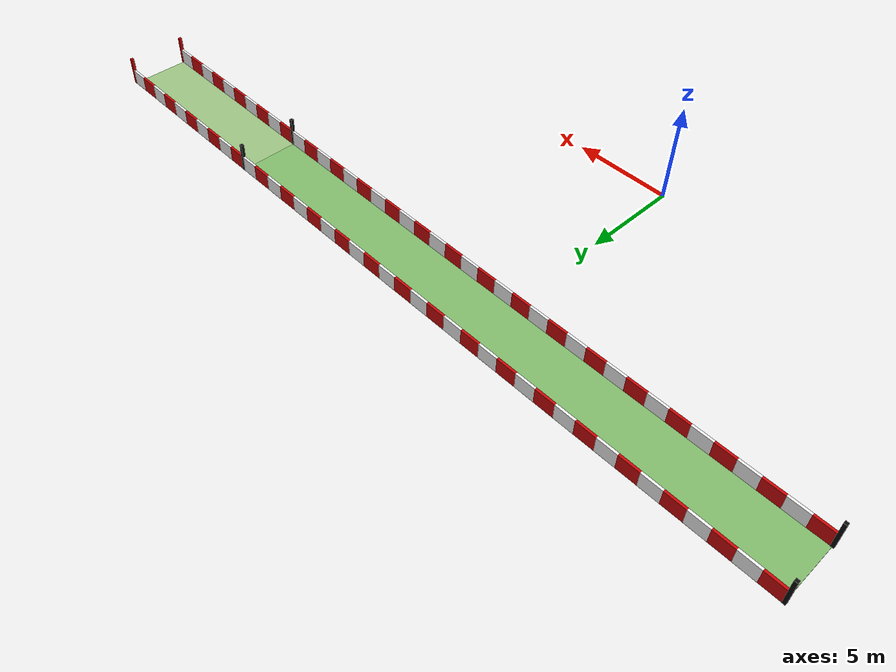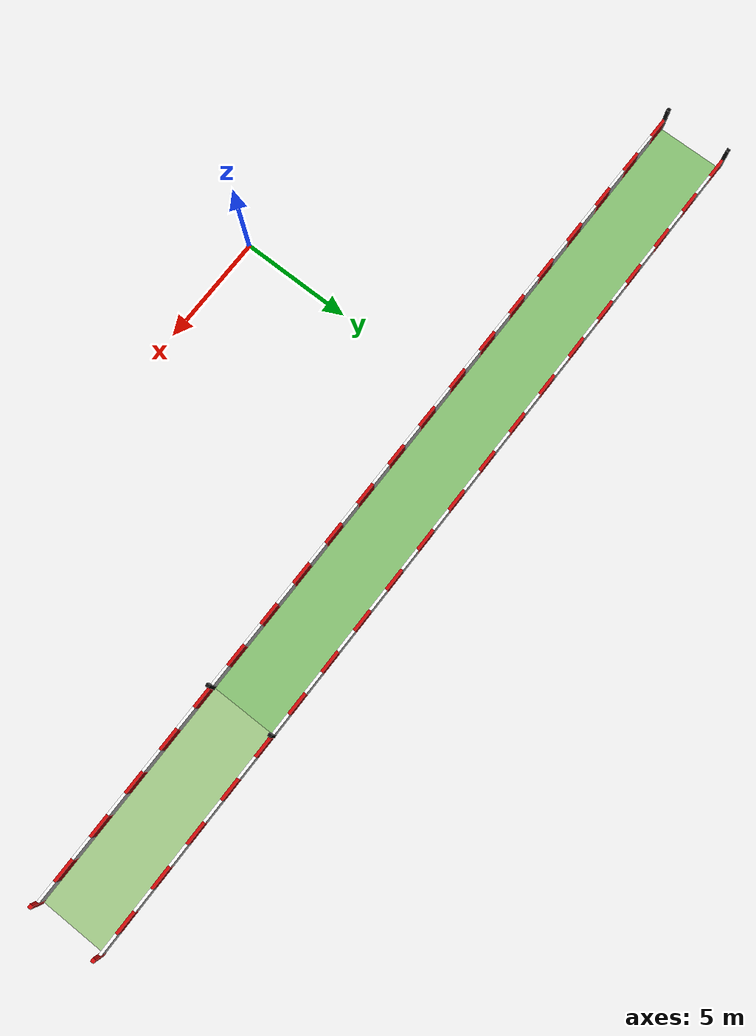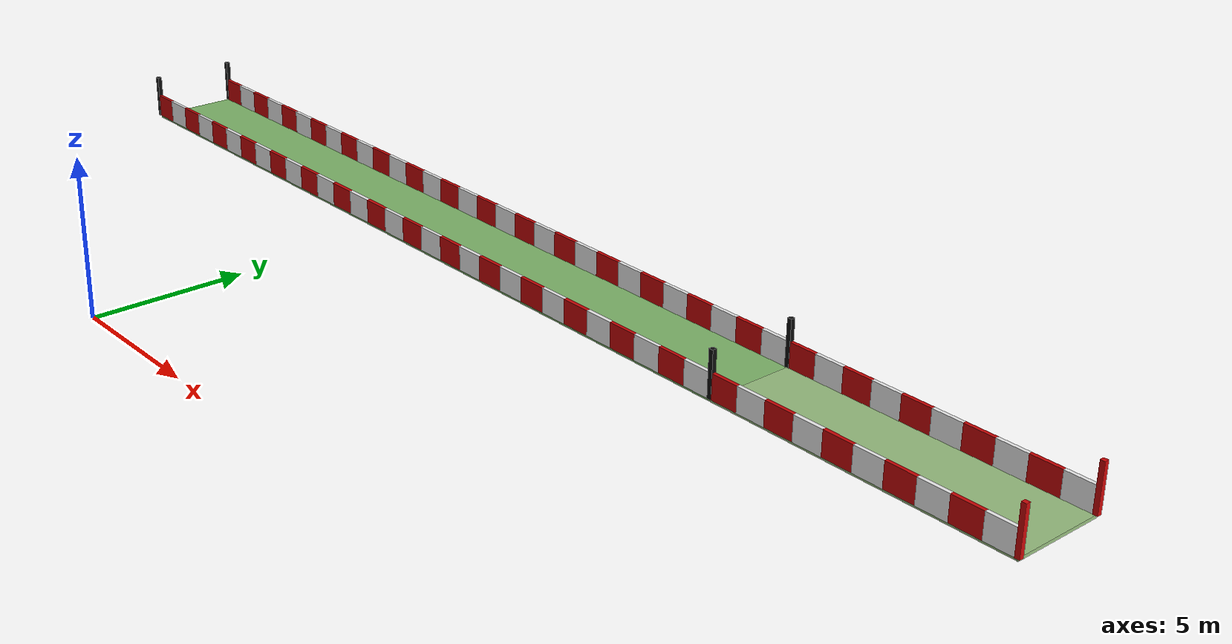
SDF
<sdf version="1.6">
 <world name="evrenos_teknofest_2026">
  <include><uri>model://sun</uri></include>
  <model name="acceleration_course">
   <static>true</static>
   <link name="accel_30m">
    <pose>0.0000 12.0000 -0.0500 0.000000 0.000000 0.000000</pose>
    <collision name="accel_30m_collision">
     <geometry><box><size>30.0000 3.0000 0.1000</size></box></geometry>
    </collision>
    <visual name="accel_30m_visual">
     <geometry><box><size>30.0000 3.0000 0.1000</size></box></geometry>
     <material><ambient>0.5 0.72 0.42 1</ambient><diffuse>0.5 0.72 0.42 1</diffuse></material>
    </visual>
   </link>
   <link name="accel_stop_10m">
    <pose>20.0000 12.0000 -0.0500 0.000000 0.000000 0.000000</pose>
    <collision name="accel_stop_10m_collision">
     <geometry><box><size>10.0000 3.0000 0.1000</size></box></geometry>
    </collision>
    <visual name="accel_stop_10m_visual">
     <geometry><box><size>10.0000 3.0000 0.1000</size></box></geometry>
     <material><ambient>0.6 0.75 0.5 1</ambient><diffuse>0.6 0.75 0.5 1</diffuse></material>
    </visual>
   </link>
   <link name="accel_bar_-1_0">
    <pose>-14.5000 10.5000 0.4000 0.000000 0.000000 0.000000</pose>
    <collision name="accel_bar_-1_0_collision">
     <geometry><box><size>1.0000 0.1200 0.8000</size></box></geometry>
    </collision>
    <visual name="accel_bar_-1_0_visual">
     <geometry><box><size>1.0000 0.1200 0.8000</size></box></geometry>
     <material><ambient>0.8 0.03 0.03 1</ambient><diffuse>0.8 0.03 0.03 1</diffuse></material>
    </visual>
   </link>
   <link name="accel_bar_-1_1">
    <pose>-13.5000 10.5000 0.4000 0.000000 0.000000 0.000000</pose>
    <collision name="accel_bar_-1_1_collision">
     <geometry><box><size>1.0000 0.1200 0.8000</size></box></geometry>
    </collision>
    <visual name="accel_bar_-1_1_visual">
     <geometry><box><size>1.0000 0.1200 0.8000</size></box></geometry>
     <material><ambient>0.95 0.95 0.95 1</ambient><diffuse>0.95 0.95 0.95 1</diffuse></material>
    </visual>
   </link>
   <link name="accel_bar_-1_2">
    <pose>-12.5000 10.5000 0.4000 0.000000 0.000000 0.000000</pose>
    <collision name="accel_bar_-1_2_collision">
     <geometry><box><size>1.0000 0.1200 0.8000</size></box></geometry>
    </collision>
    <visual name="accel_bar_-1_2_visual">
     <geometry><box><size>1.0000 0.1200 0.8000</size></box></geometry>
     <material><ambient>0.8 0.03 0.03 1</ambient><diffuse>0.8 0.03 0.03 1</diffuse></material>
    </visual>
   </link>
   <link name="accel_bar_-1_3">
    <pose>-11.5000 10.5000 0.4000 0.000000 0.000000 0.000000</pose>
    <collision name="accel_bar_-1_3_collision">
     <geometry><box><size>1.0000 0.1200 0.8000</size></box></geometry>
    </collision>
    <visual name="accel_bar_-1_3_visual">
     <geometry><box><size>1.0000 0.1200 0.8000</size></box></geometry>
     <material><ambient>0.95 0.95 0.95 1</ambient><diffuse>0.95 0.95 0.95 1</diffuse></material>
    </visual>
   </link>
   <link name="accel_bar_-1_4">
    <pose>-10.5000 10.5000 0.4000 0.000000 0.000000 0.000000</pose>
    <collision name="accel_bar_-1_4_collision">
     <geometry><box><size>1.0000 0.1200 0.8000</size></box></geometry>
    </collision>
    <visual name="accel_bar_-1_4_visual">
     <geometry><box><size>1.0000 0.1200 0.8000</size></box></geometry>
     <material><ambient>0.8 0.03 0.03 1</ambient><diffuse>0.8 0.03 0.03 1</diffuse></material>
    </visual>
   </link>
   <link name="accel_bar_-1_5">
    <pose>-9.5000 10.5000 0.4000 0.000000 0.000000 0.000000</pose>
    <collision name="accel_bar_-1_5_collision">
     <geometry><box><size>1.0000 0.1200 0.8000</size></box></geometry>
    </collision>
    <visual name="accel_bar_-1_5_visual">
     <geometry><box><size>1.0000 0.1200 0.8000</size></box></geometry>
     <material><ambient>0.95 0.95 0.95 1</ambient><diffuse>0.95 0.95 0.95 1</diffuse></material>
    </visual>
   </link>
   <link name="accel_bar_-1_6">
    <pose>-8.5000 10.5000 0.4000 0.000000 0.000000 0.000000</pose>
    <collision name="accel_bar_-1_6_collision">
     <geometry><box><size>1.0000 0.1200 0.8000</size></box></geometry>
    </collision>
    <visual name="accel_bar_-1_6_visual">
     <geometry><box><size>1.0000 0.1200 0.8000</size></box></geometry>
     <material><ambient>0.8 0.03 0.03 1</ambient><diffuse>0.8 0.03 0.03 1</diffuse></material>
    </visual>
   </link>
   <link name="accel_bar_-1_7">
    <pose>-7.5000 10.5000 0.4000 0.000000 0.000000 0.000000</pose>
    <collision name="accel_bar_-1_7_collision">
     <geometry><box><size>1.0000 0.1200 0.8000</size></box></geometry>
    </collision>
    <visual name="accel_bar_-1_7_visual">
     <geometry><box><size>1.0000 0.1200 0.8000</size></box></geometry>
     <material><ambient>0.95 0.95 0.95 1</ambient><diffuse>0.95 0.95 0.95 1</diffuse></material>
    </visual>
   </link>
   <link name="accel_bar_-1_8">
    <pose>-6.5000 10.5000 0.4000 0.000000 0.000000 0.000000</pose>
    <collision name="accel_bar_-1_8_collision">
     <geometry><box><size>1.0000 0.1200 0.8000</size></box></geometry>
    </collision>
    <visual name="accel_bar_-1_8_visual">
     <geometry><box><size>1.0000 0.1200 0.8000</size></box></geometry>
     <material><ambient>0.8 0.03 0.03 1</ambient><diffuse>0.8 0.03 0.03 1</diffuse></material>
    </visual>
   </link>
   <link name="accel_bar_-1_9">
    <pose>-5.5000 10.5000 0.4000 0.000000 0.000000 0.000000</pose>
    <collision name="accel_bar_-1_9_collision">
     <geometry><box><size>1.0000 0.1200 0.8000</size></box></geometry>
    </collision>
    <visual name="accel_bar_-1_9_visual">
     <geometry><box><size>1.0000 0.1200 0.8000</size></box></geometry>
     <material><ambient>0.95 0.95 0.95 1</ambient><diffuse>0.95 0.95 0.95 1</diffuse></material>
    </visual>
   </link>
   <link name="accel_bar_-1_10">
    <pose>-4.5000 10.5000 0.4000 0.000000 0.000000 0.000000</pose>
    <collision name="accel_bar_-1_10_collision">
     <geometry><box><size>1.0000 0.1200 0.8000</size></box></geometry>
    </collision>
    <visual name="accel_bar_-1_10_visual">
     <geometry><box><size>1.0000 0.1200 0.8000</size></box></geometry>
     <material><ambient>0.8 0.03 0.03 1</ambient><diffuse>0.8 0.03 0.03 1</diffuse></material>
    </visual>
   </link>
   <link name="accel_bar_-1_11">
    <pose>-3.5000 10.5000 0.4000 0.000000 0.000000 0.000000</pose>
    <collision name="accel_bar_-1_11_collision">
     <geometry><box><size>1.0000 0.1200 0.8000</size></box></geometry>
    </collision>
    <visual name="accel_bar_-1_11_visual">
     <geometry><box><size>1.0000 0.1200 0.8000</size></box></geometry>
     <material><ambient>0.95 0.95 0.95 1</ambient><diffuse>0.95 0.95 0.95 1</diffuse></material>
    </visual>
   </link>
   <link name="accel_bar_-1_12">
    <pose>-2.5000 10.5000 0.4000 0.000000 0.000000 0.000000</pose>
    <collision name="accel_bar_-1_12_collision">
     <geometry><box><size>1.0000 0.1200 0.8000</size></box></geometry>
    </collision>
    <visual name="accel_bar_-1_12_visual">
     <geometry><box><size>1.0000 0.1200 0.8000</size></box></geometry>
     <material><ambient>0.8 0.03 0.03 1</ambient><diffuse>0.8 0.03 0.03 1</diffuse></material>
    </visual>
   </link>
   <link name="accel_bar_-1_13">
    <pose>-1.5000 10.5000 0.4000 0.000000 0.000000 0.000000</pose>
    <collision name="accel_bar_-1_13_collision">
     <geometry><box><size>1.0000 0.1200 0.8000</size></box></geometry>
    </collision>
    <visual name="accel_bar_-1_13_visual">
     <geometry><box><size>1.0000 0.1200 0.8000</size></box></geometry>
     <material><ambient>0.95 0.95 0.95 1</ambient><diffuse>0.95 0.95 0.95 1</diffuse></material>
    </visual>
   </link>
   <link name="accel_bar_-1_14">
    <pose>-0.5000 10.5000 0.4000 0.000000 0.000000 0.000000</pose>
    <collision name="accel_bar_-1_14_collision">
     <geometry><box><size>1.0000 0.1200 0.8000</size></box></geometry>
    </collision>
    <visual name="accel_bar_-1_14_visual">
     <geometry><box><size>1.0000 0.1200 0.8000</size></box></geometry>
     <material><ambient>0.8 0.03 0.03 1</ambient><diffuse>0.8 0.03 0.03 1</diffuse></material>
    </visual>
   </link>
   <link name="accel_bar_-1_15">
    <pose>0.5000 10.5000 0.4000 0.000000 0.000000 0.000000</pose>
    <collision name="accel_bar_-1_15_collision">
     <geometry><box><size>1.0000 0.1200 0.8000</size></box></geometry>
    </collision>
    <visual name="accel_bar_-1_15_visual">
     <geometry><box><size>1.0000 0.1200 0.8000</size></box></geometry>
     <material><ambient>0.95 0.95 0.95 1</ambient><diffuse>0.95 0.95 0.95 1</diffuse></material>
    </visual>
   </link>
   <link name="accel_bar_-1_16">
    <pose>1.5000 10.5000 0.4000 0.000000 0.000000 0.000000</pose>
    <collision name="accel_bar_-1_16_collision">
     <geometry><box><size>1.0000 0.1200 0.8000</size></box></geometry>
    </collision>
    <visual name="accel_bar_-1_16_visual">
     <geometry><box><size>1.0000 0.1200 0.8000</size></box></geometry>
     <material><ambient>0.8 0.03 0.03 1</ambient><diffuse>0.8 0.03 0.03 1</diffuse></material>
    </visual>
   </link>
   <link name="accel_bar_-1_17">
    <pose>2.5000 10.5000 0.4000 0.000000 0.000000 0.000000</pose>
    <collision name="accel_bar_-1_17_collision">
     <geometry><box><size>1.0000 0.1200 0.8000</size></box></geometry>
    </collision>
    <visual name="accel_bar_-1_17_visual">
     <geometry><box><size>1.0000 0.1200 0.8000</size></box></geometry>
     <material><ambient>0.95 0.95 0.95 1</ambient><diffuse>0.95 0.95 0.95 1</diffuse></material>
    </visual>
   </link>
   <link name="accel_bar_-1_18">
    <pose>3.5000 10.5000 0.4000 0.000000 0.000000 0.000000</pose>
    <collision name="accel_bar_-1_18_collision">
     <geometry><box><size>1.0000 0.1200 0.8000</size></box></geometry>
    </collision>
    <visual name="accel_bar_-1_18_visual">
     <geometry><box><size>1.0000 0.1200 0.8000</size></box></geometry>
     <material><ambient>0.8 0.03 0.03 1</ambient><diffuse>0.8 0.03 0.03 1</diffuse></material>
    </visual>
   </link>
   <link name="accel_bar_-1_19">
    <pose>4.5000 10.5000 0.4000 0.000000 0.000000 0.000000</pose>
    <collision name="accel_bar_-1_19_collision">
     <geometry><box><size>1.0000 0.1200 0.8000</size></box></geometry>
    </collision>
    <visual name="accel_bar_-1_19_visual">
     <geometry><box><size>1.0000 0.1200 0.8000</size></box></geometry>
     <material><ambient>0.95 0.95 0.95 1</ambient><diffuse>0.95 0.95 0.95 1</diffuse></material>
    </visual>
   </link>
   <link name="accel_bar_-1_20">
    <pose>5.5000 10.5000 0.4000 0.000000 0.000000 0.000000</pose>
    <collision name="accel_bar_-1_20_collision">
     <geometry><box><size>1.0000 0.1200 0.8000</size></box></geometry>
    </collision>
    <visual name="accel_bar_-1_20_visual">
     <geometry><box><size>1.0000 0.1200 0.8000</size></box></geometry>
     <material><ambient>0.8 0.03 0.03 1</ambient><diffuse>0.8 0.03 0.03 1</diffuse></material>
    </visual>
   </link>
   <link name="accel_bar_-1_21">
    <pose>6.5000 10.5000 0.4000 0.000000 0.000000 0.000000</pose>
    <collision name="accel_bar_-1_21_collision">
     <geometry><box><size>1.0000 0.1200 0.8000</size></box></geometry>
    </collision>
    <visual name="accel_bar_-1_21_visual">
     <geometry><box><size>1.0000 0.1200 0.8000</size></box></geometry>
     <material><ambient>0.95 0.95 0.95 1</ambient><diffuse>0.95 0.95 0.95 1</diffuse></material>
    </visual>
   </link>
   <link name="accel_bar_-1_22">
    <pose>7.5000 10.5000 0.4000 0.000000 0.000000 0.000000</pose>
    <collision name="accel_bar_-1_22_collision">
     <geometry><box><size>1.0000 0.1200 0.8000</size></box></geometry>
    </collision>
    <visual name="accel_bar_-1_22_visual">
     <geometry><box><size>1.0000 0.1200 0.8000</size></box></geometry>
     <material><ambient>0.8 0.03 0.03 1</ambient><diffuse>0.8 0.03 0.03 1</diffuse></material>
    </visual>
   </link>
   <link name="accel_bar_-1_23">
    <pose>8.5000 10.5000 0.4000 0.000000 0.000000 0.000000</pose>
    <collision name="accel_bar_-1_23_collision">
     <geometry><box><size>1.0000 0.1200 0.8000</size></box></geometry>
    </collision>
    <visual name="accel_bar_-1_23_visual">
     <geometry><box><size>1.0000 0.1200 0.8000</size></box></geometry>
     <material><ambient>0.95 0.95 0.95 1</ambient><diffuse>0.95 0.95 0.95 1</diffuse></material>
    </visual>
   </link>
   <link name="accel_bar_-1_24">
    <pose>9.5000 10.5000 0.4000 0.000000 0.000000 0.000000</pose>
    <collision name="accel_bar_-1_24_collision">
     <geometry><box><size>1.0000 0.1200 0.8000</size></box></geometry>
    </collision>
    <visual name="accel_bar_-1_24_visual">
     <geometry><box><size>1.0000 0.1200 0.8000</size></box></geometry>
     <material><ambient>0.8 0.03 0.03 1</ambient><diffuse>0.8 0.03 0.03 1</diffuse></material>
    </visual>
   </link>
   <link name="accel_bar_-1_25">
    <pose>10.5000 10.5000 0.4000 0.000000 0.000000 0.000000</pose>
    <collision name="accel_bar_-1_25_collision">
     <geometry><box><size>1.0000 0.1200 0.8000</size></box></geometry>
    </collision>
    <visual name="accel_bar_-1_25_visual">
     <geometry><box><size>1.0000 0.1200 0.8000</size></box></geometry>
     <material><ambient>0.95 0.95 0.95 1</ambient><diffuse>0.95 0.95 0.95 1</diffuse></material>
    </visual>
   </link>
   <link name="accel_bar_-1_26">
    <pose>11.5000 10.5000 0.4000 0.000000 0.000000 0.000000</pose>
    <collision name="accel_bar_-1_26_collision">
     <geometry><box><size>1.0000 0.1200 0.8000</size></box></geometry>
    </collision>
    <visual name="accel_bar_-1_26_visual">
     <geometry><box><size>1.0000 0.1200 0.8000</size></box></geometry>
     <material><ambient>0.8 0.03 0.03 1</ambient><diffuse>0.8 0.03 0.03 1</diffuse></material>
    </visual>
   </link>
   <link name="accel_bar_-1_27">
    <pose>12.5000 10.5000 0.4000 0.000000 0.000000 0.000000</pose>
    <collision name="accel_bar_-1_27_collision">
     <geometry><box><size>1.0000 0.1200 0.8000</size></box></geometry>
    </collision>
    <visual name="accel_bar_-1_27_visual">
     <geometry><box><size>1.0000 0.1200 0.8000</size></box></geometry>
     <material><ambient>0.95 0.95 0.95 1</ambient><diffuse>0.95 0.95 0.95 1</diffuse></material>
    </visual>
   </link>
   <link name="accel_bar_-1_28">
    <pose>13.5000 10.5000 0.4000 0.000000 0.000000 0.000000</pose>
    <collision name="accel_bar_-1_28_collision">
     <geometry><box><size>1.0000 0.1200 0.8000</size></box></geometry>
    </collision>
    <visual name="accel_bar_-1_28_visual">
     <geometry><box><size>1.0000 0.1200 0.8000</size></box></geometry>
     <material><ambient>0.8 0.03 0.03 1</ambient><diffuse>0.8 0.03 0.03 1</diffuse></material>
    </visual>
   </link>
   <link name="accel_bar_-1_29">
    <pose>14.5000 10.5000 0.4000 0.000000 0.000000 0.000000</pose>
    <collision name="accel_bar_-1_29_collision">
     <geometry><box><size>1.0000 0.1200 0.8000</size></box></geometry>
    </collision>
    <visual name="accel_bar_-1_29_visual">
     <geometry><box><size>1.0000 0.1200 0.8000</size></box></geometry>
     <material><ambient>0.95 0.95 0.95 1</ambient><diffuse>0.95 0.95 0.95 1</diffuse></material>
    </visual>
   </link>
   <link name="accel_bar_-1_30">
    <pose>15.5000 10.5000 0.4000 0.000000 0.000000 0.000000</pose>
    <collision name="accel_bar_-1_30_collision">
     <geometry><box><size>1.0000 0.1200 0.8000</size></box></geometry>
    </collision>
    <visual name="accel_bar_-1_30_visual">
     <geometry><box><size>1.0000 0.1200 0.8000</size></box></geometry>
     <material><ambient>0.8 0.03 0.03 1</ambient><diffuse>0.8 0.03 0.03 1</diffuse></material>
    </visual>
   </link>
   <link name="accel_bar_-1_31">
    <pose>16.5000 10.5000 0.4000 0.000000 0.000000 0.000000</pose>
    <collision name="accel_bar_-1_31_collision">
     <geometry><box><size>1.0000 0.1200 0.8000</size></box></geometry>
    </collision>
    <visual name="accel_bar_-1_31_visual">
     <geometry><box><size>1.0000 0.1200 0.8000</size></box></geometry>
     <material><ambient>0.95 0.95 0.95 1</ambient><diffuse>0.95 0.95 0.95 1</diffuse></material>
    </visual>
   </link>
   <link name="accel_bar_-1_32">
    <pose>17.5000 10.5000 0.4000 0.000000 0.000000 0.000000</pose>
    <collision name="accel_bar_-1_32_collision">
     <geometry><box><size>1.0000 0.1200 0.8000</size></box></geometry>
    </collision>
    <visual name="accel_bar_-1_32_visual">
     <geometry><box><size>1.0000 0.1200 0.8000</size></box></geometry>
     <material><ambient>0.8 0.03 0.03 1</ambient><diffuse>0.8 0.03 0.03 1</diffuse></material>
    </visual>
   </link>
   <link name="accel_bar_-1_33">
    <pose>18.5000 10.5000 0.4000 0.000000 0.000000 0.000000</pose>
    <collision name="accel_bar_-1_33_collision">
     <geometry><box><size>1.0000 0.1200 0.8000</size></box></geometry>
    </collision>
    <visual name="accel_bar_-1_33_visual">
     <geometry><box><size>1.0000 0.1200 0.8000</size></box></geometry>
     <material><ambient>0.95 0.95 0.95 1</ambient><diffuse>0.95 0.95 0.95 1</diffuse></material>
    </visual>
   </link>
   <link name="accel_bar_-1_34">
    <pose>19.5000 10.5000 0.4000 0.000000 0.000000 0.000000</pose>
    <collision name="accel_bar_-1_34_collision">
     <geometry><box><size>1.0000 0.1200 0.8000</size></box></geometry>
    </collision>
    <visual name="accel_bar_-1_34_visual">
     <geometry><box><size>1.0000 0.1200 0.8000</size></box></geometry>
     <material><ambient>0.8 0.03 0.03 1</ambient><diffuse>0.8 0.03 0.03 1</diffuse></material>
    </visual>
   </link>
   <link name="accel_bar_-1_35">
    <pose>20.5000 10.5000 0.4000 0.000000 0.000000 0.000000</pose>
    <collision name="accel_bar_-1_35_collision">
     <geometry><box><size>1.0000 0.1200 0.8000</size></box></geometry>
    </collision>
    <visual name="accel_bar_-1_35_visual">
     <geometry><box><size>1.0000 0.1200 0.8000</size></box></geometry>
     <material><ambient>0.95 0.95 0.95 1</ambient><diffuse>0.95 0.95 0.95 1</diffuse></material>
    </visual>
   </link>
   <link name="accel_bar_-1_36">
    <pose>21.5000 10.5000 0.4000 0.000000 0.000000 0.000000</pose>
    <collision name="accel_bar_-1_36_collision">
     <geometry><box><size>1.0000 0.1200 0.8000</size></box></geometry>
    </collision>
    <visual name="accel_bar_-1_36_visual">
     <geometry><box><size>1.0000 0.1200 0.8000</size></box></geometry>
     <material><ambient>0.8 0.03 0.03 1</ambient><diffuse>0.8 0.03 0.03 1</diffuse></material>
    </visual>
   </link>
   <link name="accel_bar_-1_37">
    <pose>22.5000 10.5000 0.4000 0.000000 0.000000 0.000000</pose>
    <collision name="accel_bar_-1_37_collision">
     <geometry><box><size>1.0000 0.1200 0.8000</size></box></geometry>
    </collision>
    <visual name="accel_bar_-1_37_visual">
     <geometry><box><size>1.0000 0.1200 0.8000</size></box></geometry>
     <material><ambient>0.95 0.95 0.95 1</ambient><diffuse>0.95 0.95 0.95 1</diffuse></material>
    </visual>
   </link>
   <link name="accel_bar_-1_38">
    <pose>23.5000 10.5000 0.4000 0.000000 0.000000 0.000000</pose>
    <collision name="accel_bar_-1_38_collision">
     <geometry><box><size>1.0000 0.1200 0.8000</size></box></geometry>
    </collision>
    <visual name="accel_bar_-1_38_visual">
     <geometry><box><size>1.0000 0.1200 0.8000</size></box></geometry>
     <material><ambient>0.8 0.03 0.03 1</ambient><diffuse>0.8 0.03 0.03 1</diffuse></material>
    </visual>
   </link>
   <link name="accel_bar_-1_39">
    <pose>24.5000 10.5000 0.4000 0.000000 0.000000 0.000000</pose>
    <collision name="accel_bar_-1_39_collision">
     <geometry><box><size>1.0000 0.1200 0.8000</size></box></geometry>
    </collision>
    <visual name="accel_bar_-1_39_visual">
     <geometry><box><size>1.0000 0.1200 0.8000</size></box></geometry>
     <material><ambient>0.95 0.95 0.95 1</ambient><diffuse>0.95 0.95 0.95 1</diffuse></material>
    </visual>
   </link>
   <link name="accel_bar_1_0">
    <pose>-14.5000 13.5000 0.4000 0.000000 0.000000 0.000000</pose>
    <collision name="accel_bar_1_0_collision">
     <geometry><box><size>1.0000 0.1200 0.8000</size></box></geometry>
    </collision>
    <visual name="accel_bar_1_0_visual">
     <geometry><box><size>1.0000 0.1200 0.8000</size></box></geometry>
     <material><ambient>0.8 0.03 0.03 1</ambient><diffuse>0.8 0.03 0.03 1</diffuse></material>
    </visual>
   </link>
   <link name="accel_bar_1_1">
    <pose>-13.5000 13.5000 0.4000 0.000000 0.000000 0.000000</pose>
    <collision name="accel_bar_1_1_collision">
     <geometry><box><size>1.0000 0.1200 0.8000</size></box></geometry>
    </collision>
    <visual name="accel_bar_1_1_visual">
     <geometry><box><size>1.0000 0.1200 0.8000</size></box></geometry>
     <material><ambient>0.95 0.95 0.95 1</ambient><diffuse>0.95 0.95 0.95 1</diffuse></material>
    </visual>
   </link>
   <link name="accel_bar_1_2">
    <pose>-12.5000 13.5000 0.4000 0.000000 0.000000 0.000000</pose>
    <collision name="accel_bar_1_2_collision">
     <geometry><box><size>1.0000 0.1200 0.8000</size></box></geometry>
    </collision>
    <visual name="accel_bar_1_2_visual">
     <geometry><box><size>1.0000 0.1200 0.8000</size></box></geometry>
     <material><ambient>0.8 0.03 0.03 1</ambient><diffuse>0.8 0.03 0.03 1</diffuse></material>
    </visual>
   </link>
   <link name="accel_bar_1_3">
    <pose>-11.5000 13.5000 0.4000 0.000000 0.000000 0.000000</pose>
    <collision name="accel_bar_1_3_collision">
     <geometry><box><size>1.0000 0.1200 0.8000</size></box></geometry>
    </collision>
    <visual name="accel_bar_1_3_visual">
     <geometry><box><size>1.0000 0.1200 0.8000</size></box></geometry>
     <material><ambient>0.95 0.95 0.95 1</ambient><diffuse>0.95 0.95 0.95 1</diffuse></material>
    </visual>
   </link>
   <link name="accel_bar_1_4">
    <pose>-10.5000 13.5000 0.4000 0.000000 0.000000 0.000000</pose>
    <collision name="accel_bar_1_4_collision">
     <geometry><box><size>1.0000 0.1200 0.8000</size></box></geometry>
    </collision>
    <visual name="accel_bar_1_4_visual">
     <geometry><box><size>1.0000 0.1200 0.8000</size></box></geometry>
     <material><ambient>0.8 0.03 0.03 1</ambient><diffuse>0.8 0.03 0.03 1</diffuse></material>
    </visual>
   </link>
   <link name="accel_bar_1_5">
    <pose>-9.5000 13.5000 0.4000 0.000000 0.000000 0.000000</pose>
    <collision name="accel_bar_1_5_collision">
     <geometry><box><size>1.0000 0.1200 0.8000</size></box></geometry>
    </collision>
    <visual name="accel_bar_1_5_visual">
     <geometry><box><size>1.0000 0.1200 0.8000</size></box></geometry>
     <material><ambient>0.95 0.95 0.95 1</ambient><diffuse>0.95 0.95 0.95 1</diffuse></material>
    </visual>
   </link>
   <link name="accel_bar_1_6">
    <pose>-8.5000 13.5000 0.4000 0.000000 0.000000 0.000000</pose>
    <collision name="accel_bar_1_6_collision">
     <geometry><box><size>1.0000 0.1200 0.8000</size></box></geometry>
    </collision>
    <visual name="accel_bar_1_6_visual">
     <geometry><box><size>1.0000 0.1200 0.8000</size></box></geometry>
     <material><ambient>0.8 0.03 0.03 1</ambient><diffuse>0.8 0.03 0.03 1</diffuse></material>
    </visual>
   </link>
   <link name="accel_bar_1_7">
    <pose>-7.5000 13.5000 0.4000 0.000000 0.000000 0.000000</pose>
    <collision name="accel_bar_1_7_collision">
     <geometry><box><size>1.0000 0.1200 0.8000</size></box></geometry>
    </collision>
    <visual name="accel_bar_1_7_visual">
     <geometry><box><size>1.0000 0.1200 0.8000</size></box></geometry>
     <material><ambient>0.95 0.95 0.95 1</ambient><diffuse>0.95 0.95 0.95 1</diffuse></material>
    </visual>
   </link>
   <link name="accel_bar_1_8">
    <pose>-6.5000 13.5000 0.4000 0.000000 0.000000 0.000000</pose>
    <collision name="accel_bar_1_8_collision">
     <geometry><box><size>1.0000 0.1200 0.8000</size></box></geometry>
    </collision>
    <visual name="accel_bar_1_8_visual">
     <geometry><box><size>1.0000 0.1200 0.8000</size></box></geometry>
     <material><ambient>0.8 0.03 0.03 1</ambient><diffuse>0.8 0.03 0.03 1</diffuse></material>
    </visual>
   </link>
   <link name="accel_bar_1_9">
    <pose>-5.5000 13.5000 0.4000 0.000000 0.000000 0.000000</pose>
    <collision name="accel_bar_1_9_collision">
     <geometry><box><size>1.0000 0.1200 0.8000</size></box></geometry>
    </collision>
    <visual name="accel_bar_1_9_visual">
     <geometry><box><size>1.0000 0.1200 0.8000</size></box></geometry>
     <material><ambient>0.95 0.95 0.95 1</ambient><diffuse>0.95 0.95 0.95 1</diffuse></material>
    </visual>
   </link>
   <link name="accel_bar_1_10">
    <pose>-4.5000 13.5000 0.4000 0.000000 0.000000 0.000000</pose>
    <collision name="accel_bar_1_10_collision">
     <geometry><box><size>1.0000 0.1200 0.8000</size></box></geometry>
    </collision>
    <visual name="accel_bar_1_10_visual">
     <geometry><box><size>1.0000 0.1200 0.8000</size></box></geometry>
     <material><ambient>0.8 0.03 0.03 1</ambient><diffuse>0.8 0.03 0.03 1</diffuse></material>
    </visual>
   </link>
   <link name="accel_bar_1_11">
    <pose>-3.5000 13.5000 0.4000 0.000000 0.000000 0.000000</pose>
    <collision name="accel_bar_1_11_collision">
     <geometry><box><size>1.0000 0.1200 0.8000</size></box></geometry>
    </collision>
    <visual name="accel_bar_1_11_visual">
     <geometry><box><size>1.0000 0.1200 0.8000</size></box></geometry>
     <material><ambient>0.95 0.95 0.95 1</ambient><diffuse>0.95 0.95 0.95 1</diffuse></material>
    </visual>
   </link>
   <link name="accel_bar_1_12">
    <pose>-2.5000 13.5000 0.4000 0.000000 0.000000 0.000000</pose>
    <collision name="accel_bar_1_12_collision">
     <geometry><box><size>1.0000 0.1200 0.8000</size></box></geometry>
    </collision>
    <visual name="accel_bar_1_12_visual">
     <geometry><box><size>1.0000 0.1200 0.8000</size></box></geometry>
     <material><ambient>0.8 0.03 0.03 1</ambient><diffuse>0.8 0.03 0.03 1</diffuse></material>
    </visual>
   </link>
   <link name="accel_bar_1_13">
    <pose>-1.5000 13.5000 0.4000 0.000000 0.000000 0.000000</pose>
    <collision name="accel_bar_1_13_collision">
     <geometry><box><size>1.0000 0.1200 0.8000</size></box></geometry>
    </collision>
    <visual name="accel_bar_1_13_visual">
     <geometry><box><size>1.0000 0.1200 0.8000</size></box></geometry>
     <material><ambient>0.95 0.95 0.95 1</ambient><diffuse>0.95 0.95 0.95 1</diffuse></material>
    </visual>
   </link>
   <link name="accel_bar_1_14">
    <pose>-0.5000 13.5000 0.4000 0.000000 0.000000 0.000000</pose>
    <collision name="accel_bar_1_14_collision">
     <geometry><box><size>1.0000 0.1200 0.8000</size></box></geometry>
    </collision>
    <visual name="accel_bar_1_14_visual">
     <geometry><box><size>1.0000 0.1200 0.8000</size></box></geometry>
     <material><ambient>0.8 0.03 0.03 1</ambient><diffuse>0.8 0.03 0.03 1</diffuse></material>
    </visual>
   </link>
   <link name="accel_bar_1_15">
    <pose>0.5000 13.5000 0.4000 0.000000 0.000000 0.000000</pose>
    <collision name="accel_bar_1_15_collision">
     <geometry><box><size>1.0000 0.1200 0.8000</size></box></geometry>
    </collision>
    <visual name="accel_bar_1_15_visual">
     <geometry><box><size>1.0000 0.1200 0.8000</size></box></geometry>
     <material><ambient>0.95 0.95 0.95 1</ambient><diffuse>0.95 0.95 0.95 1</diffuse></material>
    </visual>
   </link>
   <link name="accel_bar_1_16">
    <pose>1.5000 13.5000 0.4000 0.000000 0.000000 0.000000</pose>
    <collision name="accel_bar_1_16_collision">
     <geometry><box><size>1.0000 0.1200 0.8000</size></box></geometry>
    </collision>
    <visual name="accel_bar_1_16_visual">
     <geometry><box><size>1.0000 0.1200 0.8000</size></box></geometry>
     <material><ambient>0.8 0.03 0.03 1</ambient><diffuse>0.8 0.03 0.03 1</diffuse></material>
    </visual>
   </link>
   <link name="accel_bar_1_17">
    <pose>2.5000 13.5000 0.4000 0.000000 0.000000 0.000000</pose>
    <collision name="accel_bar_1_17_collision">
     <geometry><box><size>1.0000 0.1200 0.8000</size></box></geometry>
    </collision>
    <visual name="accel_bar_1_17_visual">
     <geometry><box><size>1.0000 0.1200 0.8000</size></box></geometry>
     <material><ambient>0.95 0.95 0.95 1</ambient><diffuse>0.95 0.95 0.95 1</diffuse></material>
    </visual>
   </link>
   <link name="accel_bar_1_18">
    <pose>3.5000 13.5000 0.4000 0.000000 0.000000 0.000000</pose>
    <collision name="accel_bar_1_18_collision">
     <geometry><box><size>1.0000 0.1200 0.8000</size></box></geometry>
    </collision>
    <visual name="accel_bar_1_18_visual">
     <geometry><box><size>1.0000 0.1200 0.8000</size></box></geometry>
     <material><ambient>0.8 0.03 0.03 1</ambient><diffuse>0.8 0.03 0.03 1</diffuse></material>
    </visual>
   </link>
   <link name="accel_bar_1_19">
    <pose>4.5000 13.5000 0.4000 0.000000 0.000000 0.000000</pose>
    <collision name="accel_bar_1_19_collision">
     <geometry><box><size>1.0000 0.1200 0.8000</size></box></geometry>
    </collision>
    <visual name="accel_bar_1_19_visual">
     <geometry><box><size>1.0000 0.1200 0.8000</size></box></geometry>
     <material><ambient>0.95 0.95 0.95 1</ambient><diffuse>0.95 0.95 0.95 1</diffuse></material>
    </visual>
   </link>
   <link name="accel_bar_1_20">
    <pose>5.5000 13.5000 0.4000 0.000000 0.000000 0.000000</pose>
    <collision name="accel_bar_1_20_collision">
     <geometry><box><size>1.0000 0.1200 0.8000</size></box></geometry>
    </collision>
    <visual name="accel_bar_1_20_visual">
     <geometry><box><size>1.0000 0.1200 0.8000</size></box></geometry>
     <material><ambient>0.8 0.03 0.03 1</ambient><diffuse>0.8 0.03 0.03 1</diffuse></material>
    </visual>
   </link>
   <link name="accel_bar_1_21">
    <pose>6.5000 13.5000 0.4000 0.000000 0.000000 0.000000</pose>
    <collision name="accel_bar_1_21_collision">
     <geometry><box><size>1.0000 0.1200 0.8000</size></box></geometry>
    </collision>
    <visual name="accel_bar_1_21_visual">
     <geometry><box><size>1.0000 0.1200 0.8000</size></box></geometry>
     <material><ambient>0.95 0.95 0.95 1</ambient><diffuse>0.95 0.95 0.95 1</diffuse></material>
    </visual>
   </link>
   <link name="accel_bar_1_22">
    <pose>7.5000 13.5000 0.4000 0.000000 0.000000 0.000000</pose>
    <collision name="accel_bar_1_22_collision">
     <geometry><box><size>1.0000 0.1200 0.8000</size></box></geometry>
    </collision>
    <visual name="accel_bar_1_22_visual">
     <geometry><box><size>1.0000 0.1200 0.8000</size></box></geometry>
     <material><ambient>0.8 0.03 0.03 1</ambient><diffuse>0.8 0.03 0.03 1</diffuse></material>
    </visual>
   </link>
   <link name="accel_bar_1_23">
    <pose>8.5000 13.5000 0.4000 0.000000 0.000000 0.000000</pose>
    <collision name="accel_bar_1_23_collision">
     <geometry><box><size>1.0000 0.1200 0.8000</size></box></geometry>
    </collision>
    <visual name="accel_bar_1_23_visual">
     <geometry><box><size>1.0000 0.1200 0.8000</size></box></geometry>
     <material><ambient>0.95 0.95 0.95 1</ambient><diffuse>0.95 0.95 0.95 1</diffuse></material>
    </visual>
   </link>
   <link name="accel_bar_1_24">
    <pose>9.5000 13.5000 0.4000 0.000000 0.000000 0.000000</pose>
    <collision name="accel_bar_1_24_collision">
     <geometry><box><size>1.0000 0.1200 0.8000</size></box></geometry>
    </collision>
    <visual name="accel_bar_1_24_visual">
     <geometry><box><size>1.0000 0.1200 0.8000</size></box></geometry>
     <material><ambient>0.8 0.03 0.03 1</ambient><diffuse>0.8 0.03 0.03 1</diffuse></material>
    </visual>
   </link>
   <link name="accel_bar_1_25">
    <pose>10.5000 13.5000 0.4000 0.000000 0.000000 0.000000</pose>
    <collision name="accel_bar_1_25_collision">
     <geometry><box><size>1.0000 0.1200 0.8000</size></box></geometry>
    </collision>
    <visual name="accel_bar_1_25_visual">
     <geometry><box><size>1.0000 0.1200 0.8000</size></box></geometry>
     <material><ambient>0.95 0.95 0.95 1</ambient><diffuse>0.95 0.95 0.95 1</diffuse></material>
    </visual>
   </link>
   <link name="accel_bar_1_26">
    <pose>11.5000 13.5000 0.4000 0.000000 0.000000 0.000000</pose>
    <collision name="accel_bar_1_26_collision">
     <geometry><box><size>1.0000 0.1200 0.8000</size></box></geometry>
    </collision>
    <visual name="accel_bar_1_26_visual">
     <geometry><box><size>1.0000 0.1200 0.8000</size></box></geometry>
     <material><ambient>0.8 0.03 0.03 1</ambient><diffuse>0.8 0.03 0.03 1</diffuse></material>
    </visual>
   </link>
   <link name="accel_bar_1_27">
    <pose>12.5000 13.5000 0.4000 0.000000 0.000000 0.000000</pose>
    <collision name="accel_bar_1_27_collision">
     <geometry><box><size>1.0000 0.1200 0.8000</size></box></geometry>
    </collision>
    <visual name="accel_bar_1_27_visual">
     <geometry><box><size>1.0000 0.1200 0.8000</size></box></geometry>
     <material><ambient>0.95 0.95 0.95 1</ambient><diffuse>0.95 0.95 0.95 1</diffuse></material>
    </visual>
   </link>
   <link name="accel_bar_1_28">
    <pose>13.5000 13.5000 0.4000 0.000000 0.000000 0.000000</pose>
    <collision name="accel_bar_1_28_collision">
     <geometry><box><size>1.0000 0.1200 0.8000</size></box></geometry>
    </collision>
    <visual name="accel_bar_1_28_visual">
     <geometry><box><size>1.0000 0.1200 0.8000</size></box></geometry>
     <material><ambient>0.8 0.03 0.03 1</ambient><diffuse>0.8 0.03 0.03 1</diffuse></material>
    </visual>
   </link>
   <link name="accel_bar_1_29">
    <pose>14.5000 13.5000 0.4000 0.000000 0.000000 0.000000</pose>
    <collision name="accel_bar_1_29_collision">
     <geometry><box><size>1.0000 0.1200 0.8000</size></box></geometry>
    </collision>
    <visual name="accel_bar_1_29_visual">
     <geometry><box><size>1.0000 0.1200 0.8000</size></box></geometry>
     <material><ambient>0.95 0.95 0.95 1</ambient><diffuse>0.95 0.95 0.95 1</diffuse></material>
    </visual>
   </link>
   <link name="accel_bar_1_30">
    <pose>15.5000 13.5000 0.4000 0.000000 0.000000 0.000000</pose>
    <collision name="accel_bar_1_30_collision">
     <geometry><box><size>1.0000 0.1200 0.8000</size></box></geometry>
    </collision>
    <visual name="accel_bar_1_30_visual">
     <geometry><box><size>1.0000 0.1200 0.8000</size></box></geometry>
     <material><ambient>0.8 0.03 0.03 1</ambient><diffuse>0.8 0.03 0.03 1</diffuse></material>
    </visual>
   </link>
   <link name="accel_bar_1_31">
    <pose>16.5000 13.5000 0.4000 0.000000 0.000000 0.000000</pose>
    <collision name="accel_bar_1_31_collision">
     <geometry><box><size>1.0000 0.1200 0.8000</size></box></geometry>
    </collision>
    <visual name="accel_bar_1_31_visual">
     <geometry><box><size>1.0000 0.1200 0.8000</size></box></geometry>
     <material><ambient>0.95 0.95 0.95 1</ambient><diffuse>0.95 0.95 0.95 1</diffuse></material>
    </visual>
   </link>
   <link name="accel_bar_1_32">
    <pose>17.5000 13.5000 0.4000 0.000000 0.000000 0.000000</pose>
    <collision name="accel_bar_1_32_collision">
     <geometry><box><size>1.0000 0.1200 0.8000</size></box></geometry>
    </collision>
    <visual name="accel_bar_1_32_visual">
     <geometry><box><size>1.0000 0.1200 0.8000</size></box></geometry>
     <material><ambient>0.8 0.03 0.03 1</ambient><diffuse>0.8 0.03 0.03 1</diffuse></material>
    </visual>
   </link>
   <link name="accel_bar_1_33">
    <pose>18.5000 13.5000 0.4000 0.000000 0.000000 0.000000</pose>
    <collision name="accel_bar_1_33_collision">
     <geometry><box><size>1.0000 0.1200 0.8000</size></box></geometry>
    </collision>
    <visual name="accel_bar_1_33_visual">
     <geometry><box><size>1.0000 0.1200 0.8000</size></box></geometry>
     <material><ambient>0.95 0.95 0.95 1</ambient><diffuse>0.95 0.95 0.95 1</diffuse></material>
    </visual>
   </link>
   <link name="accel_bar_1_34">
    <pose>19.5000 13.5000 0.4000 0.000000 0.000000 0.000000</pose>
    <collision name="accel_bar_1_34_collision">
     <geometry><box><size>1.0000 0.1200 0.8000</size></box></geometry>
    </collision>
    <visual name="accel_bar_1_34_visual">
     <geometry><box><size>1.0000 0.1200 0.8000</size></box></geometry>
     <material><ambient>0.8 0.03 0.03 1</ambient><diffuse>0.8 0.03 0.03 1</diffuse></material>
    </visual>
   </link>
   <link name="accel_bar_1_35">
    <pose>20.5000 13.5000 0.4000 0.000000 0.000000 0.000000</pose>
    <collision name="accel_bar_1_35_collision">
     <geometry><box><size>1.0000 0.1200 0.8000</size></box></geometry>
    </collision>
    <visual name="accel_bar_1_35_visual">
     <geometry><box><size>1.0000 0.1200 0.8000</size></box></geometry>
     <material><ambient>0.95 0.95 0.95 1</ambient><diffuse>0.95 0.95 0.95 1</diffuse></material>
    </visual>
   </link>
   <link name="accel_bar_1_36">
    <pose>21.5000 13.5000 0.4000 0.000000 0.000000 0.000000</pose>
    <collision name="accel_bar_1_36_collision">
     <geometry><box><size>1.0000 0.1200 0.8000</size></box></geometry>
    </collision>
    <visual name="accel_bar_1_36_visual">
     <geometry><box><size>1.0000 0.1200 0.8000</size></box></geometry>
     <material><ambient>0.8 0.03 0.03 1</ambient><diffuse>0.8 0.03 0.03 1</diffuse></material>
    </visual>
   </link>
   <link name="accel_bar_1_37">
    <pose>22.5000 13.5000 0.4000 0.000000 0.000000 0.000000</pose>
    <collision name="accel_bar_1_37_collision">
     <geometry><box><size>1.0000 0.1200 0.8000</size></box></geometry>
    </collision>
    <visual name="accel_bar_1_37_visual">
     <geometry><box><size>1.0000 0.1200 0.8000</size></box></geometry>
     <material><ambient>0.95 0.95 0.95 1</ambient><diffuse>0.95 0.95 0.95 1</diffuse></material>
    </visual>
   </link>
   <link name="accel_bar_1_38">
    <pose>23.5000 13.5000 0.4000 0.000000 0.000000 0.000000</pose>
    <collision name="accel_bar_1_38_collision">
     <geometry><box><size>1.0000 0.1200 0.8000</size></box></geometry>
    </collision>
    <visual name="accel_bar_1_38_visual">
     <geometry><box><size>1.0000 0.1200 0.8000</size></box></geometry>
     <material><ambient>0.8 0.03 0.03 1</ambient><diffuse>0.8 0.03 0.03 1</diffuse></material>
    </visual>
   </link>
   <link name="accel_bar_1_39">
    <pose>24.5000 13.5000 0.4000 0.000000 0.000000 0.000000</pose>
    <collision name="accel_bar_1_39_collision">
     <geometry><box><size>1.0000 0.1200 0.8000</size></box></geometry>
    </collision>
    <visual name="accel_bar_1_39_visual">
     <geometry><box><size>1.0000 0.1200 0.8000</size></box></geometry>
     <material><ambient>0.95 0.95 0.95 1</ambient><diffuse>0.95 0.95 0.95 1</diffuse></material>
    </visual>
   </link>
   <link name="accel_start_10.5">
    <pose>-15.0000 10.5000 0.7500 0.000000 0.000000 0.000000</pose>
    <collision name="accel_start_10.5_collision">
     <geometry><box><size>0.1500 0.1500 1.5000</size></box></geometry>
    </collision>
    <visual name="accel_start_10.5_visual">
     <geometry><box><size>0.1500 0.1500 1.5000</size></box></geometry>
     <material><ambient>0.04 0.04 0.04 1</ambient><diffuse>0.04 0.04 0.04 1</diffuse></material>
    </visual>
   </link>
   <link name="accel_start_13.5">
    <pose>-15.0000 13.5000 0.7500 0.000000 0.000000 0.000000</pose>
    <collision name="accel_start_13.5_collision">
     <geometry><box><size>0.1500 0.1500 1.5000</size></box></geometry>
    </collision>
    <visual name="accel_start_13.5_visual">
     <geometry><box><size>0.1500 0.1500 1.5000</size></box></geometry>
     <material><ambient>0.04 0.04 0.04 1</ambient><diffuse>0.04 0.04 0.04 1</diffuse></material>
    </visual>
   </link>
   <link name="accel_finish_10.5">
    <pose>15.0000 10.5000 0.7500 0.000000 0.000000 0.000000</pose>
    <collision name="accel_finish_10.5_collision">
     <geometry><box><size>0.1500 0.1500 1.5000</size></box></geometry>
    </collision>
    <visual name="accel_finish_10.5_visual">
     <geometry><box><size>0.1500 0.1500 1.5000</size></box></geometry>
     <material><ambient>0.04 0.04 0.04 1</ambient><diffuse>0.04 0.04 0.04 1</diffuse></material>
    </visual>
   </link>
   <link name="accel_finish_13.5">
    <pose>15.0000 13.5000 0.7500 0.000000 0.000000 0.000000</pose>
    <collision name="accel_finish_13.5_collision">
     <geometry><box><size>0.1500 0.1500 1.5000</size></box></geometry>
    </collision>
    <visual name="accel_finish_13.5_visual">
     <geometry><box><size>0.1500 0.1500 1.5000</size></box></geometry>
     <material><ambient>0.04 0.04 0.04 1</ambient><diffuse>0.04 0.04 0.04 1</diffuse></material>
    </visual>
   </link>
   <link name="accel_stop_end_10.5">
    <pose>25.0000 10.5000 0.7500 0.000000 0.000000 0.000000</pose>
    <collision name="accel_stop_end_10.5_collision">
     <geometry><box><size>0.1500 0.1500 1.5000</size></box></geometry>
    </collision>
    <visual name="accel_stop_end_10.5_visual">
     <geometry><box><size>0.1500 0.1500 1.5000</size></box></geometry>
     <material><ambient>0.8 0.03 0.03 1</ambient><diffuse>0.8 0.03 0.03 1</diffuse></material>
    </visual>
   </link>
   <link name="accel_stop_end_13.5">
    <pose>25.0000 13.5000 0.7500 0.000000 0.000000 0.000000</pose>
    <collision name="accel_stop_end_13.5_collision">
     <geometry><box><size>0.1500 0.1500 1.5000</size></box></geometry>
    </collision>
    <visual name="accel_stop_end_13.5_visual">
     <geometry><box><size>0.1500 0.1500 1.5000</size></box></geometry>
     <material><ambient>0.8 0.03 0.03 1</ambient><diffuse>0.8 0.03 0.03 1</diffuse></material>
    </visual>
   </link>
  </model>
 </world>
</sdf>
